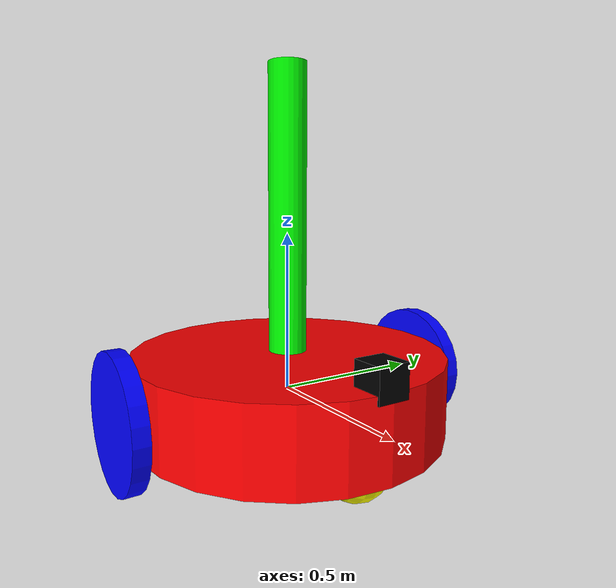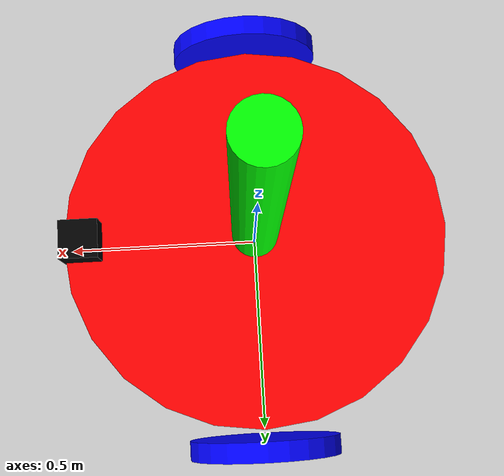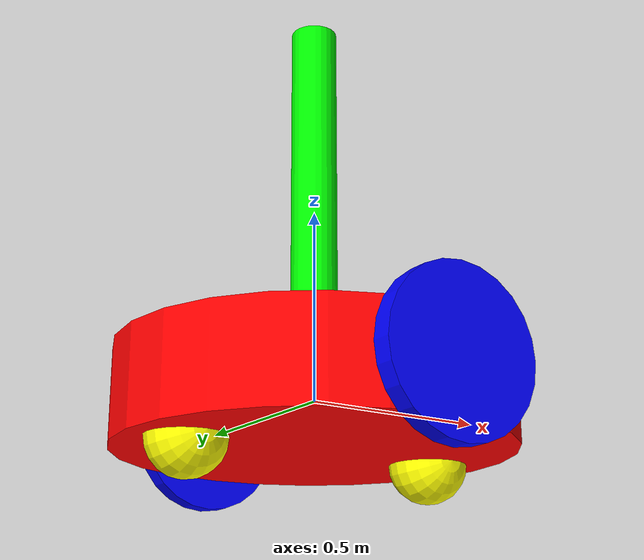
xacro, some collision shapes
<robot name="diffrobot" xmlns:xacro="http://www.ros.org/wiki/xacro">

<xacro:include filename="$(find diffrobot_description)/urdf/diffrobot.gazebo"/>

<link name="robot_footprint">

</link>

<joint name="robot_footprint_joint" type="fixed">
    <parent link ="robot_footprint"/>
    <child link ="base_link"/>
</joint>

<link name="base_link">
    <inertial>
        <origin xyz="0.0 0.0 0.0" rpy="0.0 0.0 0.0"/>
        <mass value="5.0"/>
        <inertia ixx="0.0" ixy="0.0" ixz="0.0" iyy="0.0" iyz="0.0" izz="0.0"/>
    </inertial>
    <visual name="base_link_visual">
        <origin xyz="0.0 0.0 0.0" rpy="0.0 0.0 0.0"/>
        <geometry>
           <cylinder radius="0.5" length="0.25"/>
        </geometry>
        <material name="">
            <color rgba="1.0 0.0 0.0 1.0"/>
            <texture filename=""/>
        </material>
    </visual>
    <collision>
        <origin xyz="0.0 0.0 0.0" rpy="0.0 0.0 0.0"/>
        <geometry>
           <cylinder radius="0.5" length="0.25"/>
        </geometry>
    </collision>
</link>

<link name="cylinder_link">
    <inertial>
        <origin xyz="0.0 0.0 0.0" rpy="0.0 0.0 0.0"/>
        <mass value="1.0"/>
        <inertia ixx="0.0" ixy="0.0" ixz="0.0" iyy="0.0" iyz="0.0" izz="0.0"/>
    </inertial>
    <visual name="cylinder_link_visual">
        <origin xyz="0.0 0.0 0.0" rpy="0.0 0.0 0.0"/>
        <geometry>
            <cylinder radius="0.06" length="0.9"/>
        </geometry>
        <material name="">
            <color rgba="0.0 1.0 0.0 1.0"/>
            <texture filename=""/>
        </material>
    </visual>
    <collision>
        <origin xyz="0.0 0.0 0.0" rpy="0.0 0.0 0.0"/>
        <geometry>
           <cylinder radius="0.06" length="0.9"/>
        </geometry>
    </collision>
</link>

<joint name="cylinder_joint" type="fixed">
    <origin xyz="0.0 0.0 0.57" rpy="0.0 0.0 0.0"/>
    <parent link="base_link"/>
    <child link="cylinder_link"/>
    <axis xyz="0.0 0.0 0.0"/>
    <limit lower="0.0" upper="0.0" effort="0.0" velocity="0.0"/>
</joint>

<link name="left_wheel">
    <inertial>
        <origin xyz="0.0 0.0 0.0" rpy="0.0 0.0 0.0"/>
        <mass value="1.0"/>
        <inertia ixx="0.0" ixy="0.0" ixz="0.0" iyy="0.0" iyz="0.0" izz="0.0"/>
    </inertial>
    <visual name="left_wheel_visual">
        <origin xyz="0.0 0.0 0.0" rpy="0.0 0.0 0.0"/>
        <geometry>
            <cylinder radius="0.2" length="0.05"/>
        </geometry>
        <material name="">
            <color rgba="0.0 0.0 1.0 1.0"/>
            <texture filename=""/>
        </material>
    </visual>
    <collision>
        <origin xyz="0.0 0.0 0.0" rpy="0.0 0.0 0.0"/>
        <geometry>
            <cylinder radius="0.2" length="0.05"/>
        </geometry>
    </collision>
</link>

<joint name="left_wheel_joint" type="continuous">
    <origin xyz="0.0 0.55 0.0" rpy="0.0 1.5707 1.5707"/>
    <parent link="base_link"/>
    <child link="left_wheel"/>
    <axis xyz="0.0 0.0 1.0"/>
    <limit lower="0.0" upper="0.0" effort="0.0" velocity="0.0"/>
</joint>

<link name="right_wheel">
    <inertial>
        <origin xyz="0.0 0.0 0.0" rpy="0.0 0.0 0.0"/>
        <mass value="1.0"/>
        <inertia ixx="0.0" ixy="0.0" ixz="0.0" iyy="0.0" iyz="0.0" izz="0.0"/>
    </inertial>
    <visual name="right_wheel_visual">
        <origin xyz="0.0 0.0 0.0" rpy="0.0 0.0 0.0"/>
        <geometry>
          <cylinder radius="0.2" length="0.05"/>
        </geometry>
        <material name="">
            <color rgba="0.0 0.0 1.0 1.0"/>
            <texture filename=""/>
        </material>
    </visual>
    <collision>
        <origin xyz="0.0 0.0 0.0" rpy="0.0 0.0 0.0"/>
        <geometry>
           <cylinder radius="0.2" length="0.05"/>
        </geometry>
    </collision>
</link>

<joint name="right_wheel_joint" type="continuous">
    <origin xyz="0.0 -0.55 0.0" rpy="0.0 1.5707 1.5707"/>
    <parent link="base_link"/>
    <child link="right_wheel"/>
    <axis xyz="0.0 0.0 1.0"/>
    <limit lower="0.0" upper="0.0" effort="0.0" velocity="0.0"/>
</joint>

<link name="front_caster">
    <inertial>
        <origin xyz="0.0 0.0 0.0" rpy="0.0 0.0 0.0"/>
        <mass value="0.1"/>
        <inertia ixx="0.0" ixy="0.0" ixz="0.0" iyy="0.0" iyz="0.0" izz="0.0"/>
    </inertial>
    <visual name="front_caster_visual">
        <origin xyz="0.0 0.0 0.0" rpy="0.0 0.0 0.0"/>
        <geometry>
             <sphere radius="0.1"/>
        </geometry>
        <material name="">
            <color rgba="1.0 1.0 0.0 1.0"/>
            <texture filename=""/>
        </material>
    </visual>
    <collision>
        <origin xyz="0.0 0.0 0.0" rpy="0.0 0.0 0.0"/>
        <geometry>
             <sphere radius="0.1"/>
        </geometry>
    </collision>
</link>

<joint name="front_caster_joint" type="fixed">
    <origin xyz="0.35 0.0 -0.125" rpy="0.0 1.5707 1.5707"/>
    <parent link="base_link"/>
    <child link="front_caster"/>
    <axis xyz="0.0 0.0 0.0"/>
    <limit lower="0.0" upper="0.0" effort="0.0" velocity="0.0"/>
</joint>

<link name="back_caster">
    <inertial>
        <origin xyz="0.0 0.0 0.0" rpy="0.0 0.0 0.0"/>
        <mass value="0.1"/>
        <inertia ixx="0.0" ixy="0.0" ixz="0.0" iyy="0.0" iyz="0.0" izz="0.0"/>
    </inertial>
    <visual name="back_caster_visual">
        <origin xyz="0.0 0.0 0.0" rpy="0.0 0.0 0.0"/>
        <geometry>
             <sphere radius="0.1"/>
        </geometry>
        <material name="">
            <color rgba="1.0 1.0 0.0 1.0"/>
            <texture filename=""/>
        </material>
    </visual>
    <collision>
        <origin xyz="0.0 0.0 0.0" rpy="0.0 0.0 0.0"/>
        <geometry>
             <sphere radius="0.1"/>
        </geometry>
    </collision>
</link>

<joint name="back_caster_joint" type="fixed">
    <origin xyz="-0.35 0.0 -0.125" rpy="0.0 1.5707 1.5707"/>
    <parent link="base_link"/>
    <child link="back_caster"/>
    <axis xyz="0.0 0.0 0.0"/>
    <limit lower="0.0" upper="0.0" effort="0.0" velocity="0.0"/>
</joint>

<link name="lidar_link">
    <inertial>
        <origin xyz="0.0 0.0 0.0" rpy="0.0 0.0 0.0"/>
        <mass value="0.1"/>
        <inertia ixx="0.0" ixy="0.0" ixz="0.0" iyy="0.0" iyz="0.0" izz="0.0"/>
    </inertial>
    <visual name="lidar_link_visual">
        <origin xyz="0.0 0.0 0.0" rpy="0.0 0.0 0.0"/>
        <geometry>
       <mesh filename="package://diffrobot_description/meshes/rplidar.dae"/>
          </geometry>
        <material name="">
            <color rgba="0.0 0.0 0.0 1.0"/>
            <texture filename=""/>
        </material>
    </visual>
    <collision>
        <origin xyz="0.0 0.0 0.0" rpy="0.0 0.0 0.0"/>
        <geometry>
            <box size="0.1 0.1 0.1"/>
        </geometry>
    </collision>
</link>

<joint name="lidar_joint" type="fixed">
 <origin xyz="0.45 0.0 0.15" rpy="1.5708 0.0 1.5708"/>
  <parent link="base_link"/>
    <child link="lidar_link"/>
    <axis xyz="0.0 0.0 0.0"/>
    <limit lower="0.0" upper="0.0" effort="0.0" velocity="0.0"/>
</joint>

    <link name="laser_data_link">

    </link>

    <joint name="laser_data_joint" type="fixed">
        <origin xyz="0.0 0.0 0.0" rpy="0.0 -1.5708 -1.5708"/>
        <parent link="lidar_link"/>
        <child link="laser_data_link"/>
    </joint>

</robot>
